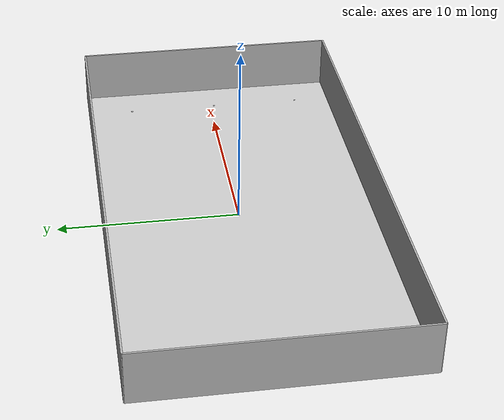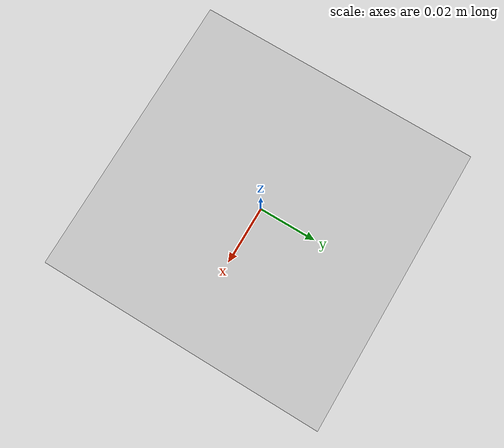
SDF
<sdf version="1.5">
 <world name="iarc">
  <scene><include><uri>model://sun</uri></include><sky><clouds><speed>12</speed></clouds></sky></scene>
  <physics type="ode">
   <max_step_size>0.001</max_step_size>
   <real_time_update_rate>1000</real_time_update_rate>
   <gravity>0 0 -9.8</gravity>
   <ode>
    <solver><type>quick</type><iters>100</iters><sor>1.3</sor></solver>
    <constraints>
     <cfm>0</cfm>
     <erp>1</erp>
     <contact_max_correcting_vel>0</contact_max_correcting_vel>
     <contact_surface_layer>0</contact_surface_layer>
    </constraints>
   </ode>
  </physics>
  <include><uri>model://iarc_sim_3d/models/floor</uri></include>
  <include><uri>model://iarc_sim_3d/models/qr1</uri></include>
  <include><uri>model://iarc_sim_3d/models/qr2</uri></include>
  <include><uri>model://iarc_sim_3d/models/qr3</uri></include>
  <include><uri>model://iarc_sim_3d/models/qr4</uri></include>
  <model name="QR1">
   <pose>10 0 1.15 0 0 0</pose>
   <static>1</static>
   <link name="link">
    <visual name="visual">
     <geometry><plane><normal>0 0 0</normal><size>0.1 0.1</size></plane></geometry>
     <material>
      <script><uri>file://media/materials/scripts/iarc.material</uri><name>IARC/QR1</name></script>
     </material>
    </visual>
    <collision name="collision">
     <geometry><plane><normal>0 0 0</normal><size>0.1 0.1</size></plane></geometry>
    </collision>
   </link>
  </model>
  <model name="QR2">
   <pose>10 5 1.15 0 0 0</pose>
   <static>1</static>
   <link name="link">
    <visual name="visual">
     <geometry><plane><normal>0 0 0</normal><size>0.1 0.1</size></plane></geometry>
     <material>
      <script><uri>file://media/materials/scripts/iarc.material</uri><name>IARC/QR2</name></script>
     </material>
    </visual>
    <collision name="collision">
     <geometry><plane><normal>0 0 0</normal><size>0.1 0.1</size></plane></geometry>
    </collision>
   </link>
  </model>
  <model name="QR3">
   <pose>10 -5 1.15 0 0 0</pose>
   <static>1</static>
   <link name="link">
    <visual name="visual">
     <geometry><plane><normal>0 0 0</normal><size>0.1 0.1</size></plane></geometry>
     <material>
      <script><uri>file://media/materials/scripts/iarc.material</uri><name>IARC/QR3</name></script>
     </material>
    </visual>
    <collision name="collision">
     <geometry><plane><normal>0 0 0</normal><size>0.1 0.1</size></plane></geometry>
    </collision>
   </link>
  </model>
  <model name="wall_l">
   <pose>-14 0 1.5 0 0 0</pose>
   <static>1</static>
   <link name="link">
    <visual name="visual"><geometry><box><size>0.1 15 3</size></box></geometry></visual>
    <collision name="collision"><geometry><box><size>0.1 15 3</size></box></geometry></collision>
   </link>
  </model>
  <model name="wall_r">
   <pose>14 0 1.5 0 0 0</pose>
   <static>1</static>
   <link name="link">
    <visual name="visual"><geometry><box><size>0.1 15 3</size></box></geometry></visual>
    <collision name="collision"><geometry><box><size>0.1 15 3</size></box></geometry></collision>
   </link>
  </model>
  <model name="wall_b">
   <pose>0 -7.5 1.5 0 0 0</pose>
   <static>1</static>
   <link name="link">
    <visual name="visual"><geometry><box><size>28 0.1 3</size></box></geometry></visual>
    <collision name="collision"><geometry><box><size>28 0.1 3</size></box></geometry></collision>
   </link>
  </model>
  <model name="wall_f">
   <pose>0 7.5 1.5 0 0 0</pose>
   <static>1</static>
   <link name="link">
    <visual name="visual"><geometry><box><size>28 0.1 3</size></box></geometry></visual>
    <collision name="collision"><geometry><box><size>28 0.1 3</size></box></geometry></collision>
   </link>
  </model>
  <light type="directional" name="global_light">
   <pose>0 0 10 0 -0 0</pose>
   <diffuse>0.9 0.9 0.9 1</diffuse>
   <specular>0.1 0.1 0.1 1</specular>
   <attenuation>
    <range>1000</range>
    <constant>0.9</constant>
    <linear>0.01</linear>
    <quadratic>0.001</quadratic>
   </attenuation>
   <direction>-0.5 0.1 -0.9</direction>
  </light>
 </world>
</sdf>

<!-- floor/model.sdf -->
<sdf version="1.4">
    <model name="IARCFloor">
        <static>true</static>
        <link name="link">
            <collision name="collision">
                <geometry>
                    <plane>
                        <normal>0 0 1</normal>
                        <size>28 15</size>
                    </plane>
                </geometry>
                <surface>
                    <friction>
                        <ode>
                            <mu>100.0</mu>
                            <mu2>50.0</mu2>
                            <fdir1>0 0 0</fdir1>
                            <slip1>0</slip1>
                            <slip2>0</slip2>
                        </ode>
                    </friction>
                    <bounce/>
                    <contact>
                        <ode>
                            <soft_cfm>0</soft_cfm>
                            <soft_erp>0.2</soft_erp>
                            <kp>1e10</kp>
                            <kd>1</kd>
                            <max_vel>100.0</max_vel>
                            <min_depth>0.0001</min_depth>
                        </ode>
                    </contact>
                </surface>
            </collision>

            <visual name="visual">
                <cast_shadows>0</cast_shadows>
                <geometry>
                    <plane>
                        <normal>0 0 1</normal>
                        <size>28 15</size>
                    </plane>
                </geometry>
                <material>
                    <script>
                        <uri>file://media/materials/scripts/iarc.material</uri>
                        <name>IARC/Floor1</name>
                    </script>
                </material>
            </visual>
        </link>
    </model>
</sdf>

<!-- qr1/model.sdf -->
<sdf version="1.4">
    <model name="QR1">
        <static>true</static>
        <link name="link">
            <collision name="collision">
                <geometry>
                    <plane>
                        <normal>0 0 2</normal>
                        <size>0.1 0.1</size>
                    </plane>
                </geometry>
                <surface>
                    <friction>
                        <ode>
                            <mu>100.0</mu>
                            <mu2>50.0</mu2>
                            <fdir1>0 0 0</fdir1>
                            <slip1>0</slip1>
                            <slip2>0</slip2>
                        </ode>
                    </friction>
                    <bounce/>
                    <contact>
                        <ode>
                            <soft_cfm>0</soft_cfm>
                            <soft_erp>0.2</soft_erp>
                            <kp>1e10</kp>
                            <kd>1</kd>
                            <max_vel>100.0</max_vel>
                            <min_depth>0.0001</min_depth>
                        </ode>
                    </contact>
                </surface>
            </collision>

            <visual name="visual">
                <cast_shadows>0</cast_shadows>
                <geometry>
                    <plane>
                        <normal>0 0 2</normal>
                        <size>0.1 0.1</size>
                    </plane>
                </geometry>
                <material>
                    <script>
                        <uri>file://media/materials/scripts/iarc.material</uri>
                        <name>IARC/QR1</name>
                    </script>
                </material>
            </visual>
        </link>
    </model>
</sdf>

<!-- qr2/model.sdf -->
<sdf version="1.4">
    <model name="QR2">
        <static>true</static>
        <link name="link">
            <collision name="collision">
                <geometry>
                    <plane>
                        <normal>0 0 2.5</normal>
                        <size>0.1 0.1</size>
                    </plane>
                </geometry>
                <surface>
                    <friction>
                        <ode>
                            <mu>100.0</mu>
                            <mu2>50.0</mu2>
                            <fdir1>0 0 0</fdir1>
                            <slip1>0</slip1>
                            <slip2>0</slip2>
                        </ode>
                    </friction>
                    <bounce/>
                    <contact>
                        <ode>
                            <soft_cfm>0</soft_cfm>
                            <soft_erp>0.2</soft_erp>
                            <kp>1e10</kp>
                            <kd>1</kd>
                            <max_vel>100.0</max_vel>
                            <min_depth>0.0001</min_depth>
                        </ode>
                    </contact>
                </surface>
            </collision>

            <visual name="visual">
                <cast_shadows>0</cast_shadows>
                <geometry>
                    <plane>
                        <normal>0 0 2.5</normal>
                        <size>0.1 0.1</size>
                    </plane>
                </geometry>
                <material>
                    <script>
                        <uri>file://media/materials/scripts/iarc.material</uri>
                        <name>IARC/QR2</name>
                    </script>
                </material>
            </visual>
        </link>
    </model>
</sdf>

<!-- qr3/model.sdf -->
<sdf version="1.4">
    <model name="QR3">
        <static>true</static>
        <link name="link">
            <collision name="collision">
                <geometry>
                    <plane>
                        <normal>0 0 3</normal>
                        <size>0.1 0.1</size>
                    </plane>
                </geometry>
                <surface>
                    <friction>
                        <ode>
                            <mu>100.0</mu>
                            <mu2>50.0</mu2>
                            <fdir1>0 0 0</fdir1>
                            <slip1>0</slip1>
                            <slip2>0</slip2>
                        </ode>
                    </friction>
                    <bounce/>
                    <contact>
                        <ode>
                            <soft_cfm>0</soft_cfm>
                            <soft_erp>0.2</soft_erp>
                            <kp>1e10</kp>
                            <kd>1</kd>
                            <max_vel>100.0</max_vel>
                            <min_depth>0.0001</min_depth>
                        </ode>
                    </contact>
                </surface>
            </collision>

            <visual name="visual">
                <cast_shadows>0</cast_shadows>
                <geometry>
                    <plane>
                        <normal>0 0 3</normal>
                        <size>0.1 0.1</size>
                    </plane>
                </geometry>
                <material>
                    <script>
                        <uri>file://media/materials/scripts/iarc.material</uri>
                        <name>IARC/QR3</name>
                    </script>
                </material>
            </visual>
        </link>
    </model>
</sdf>

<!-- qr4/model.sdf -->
<sdf version="1.4">
    <model name="QR4">
        <static>true</static>
        <link name="link">
            <collision name="collision">
                <geometry>
                    <plane>
                        <normal>0 0 3.5</normal>
                        <size>0.1 0.1</size>
                    </plane>
                </geometry>
                <surface>
                    <friction>
                        <ode>
                            <mu>100.0</mu>
                            <mu2>50.0</mu2>
                            <fdir1>0 0 0</fdir1>
                            <slip1>0</slip1>
                            <slip2>0</slip2>
                        </ode>
                    </friction>
                    <bounce/>
                    <contact>
                        <ode>
                            <soft_cfm>0</soft_cfm>
                            <soft_erp>0.2</soft_erp>
                            <kp>1e10</kp>
                            <kd>1</kd>
                            <max_vel>100.0</max_vel>
                            <min_depth>0.0001</min_depth>
                        </ode>
                    </contact>
                </surface>
            </collision>

            <visual name="visual">
                <cast_shadows>0</cast_shadows>
                <geometry>
                    <plane>
                        <normal>0 0 3.5</normal>
                        <size>0.1 0.1</size>
                    </plane>
                </geometry>
                <material>
                    <script>
                        <uri>file://media/materials/scripts/iarc.material</uri>
                        <name>IARC/QR4</name>
                    </script>
                </material>
            </visual>
        </link>
    </model>
</sdf>
